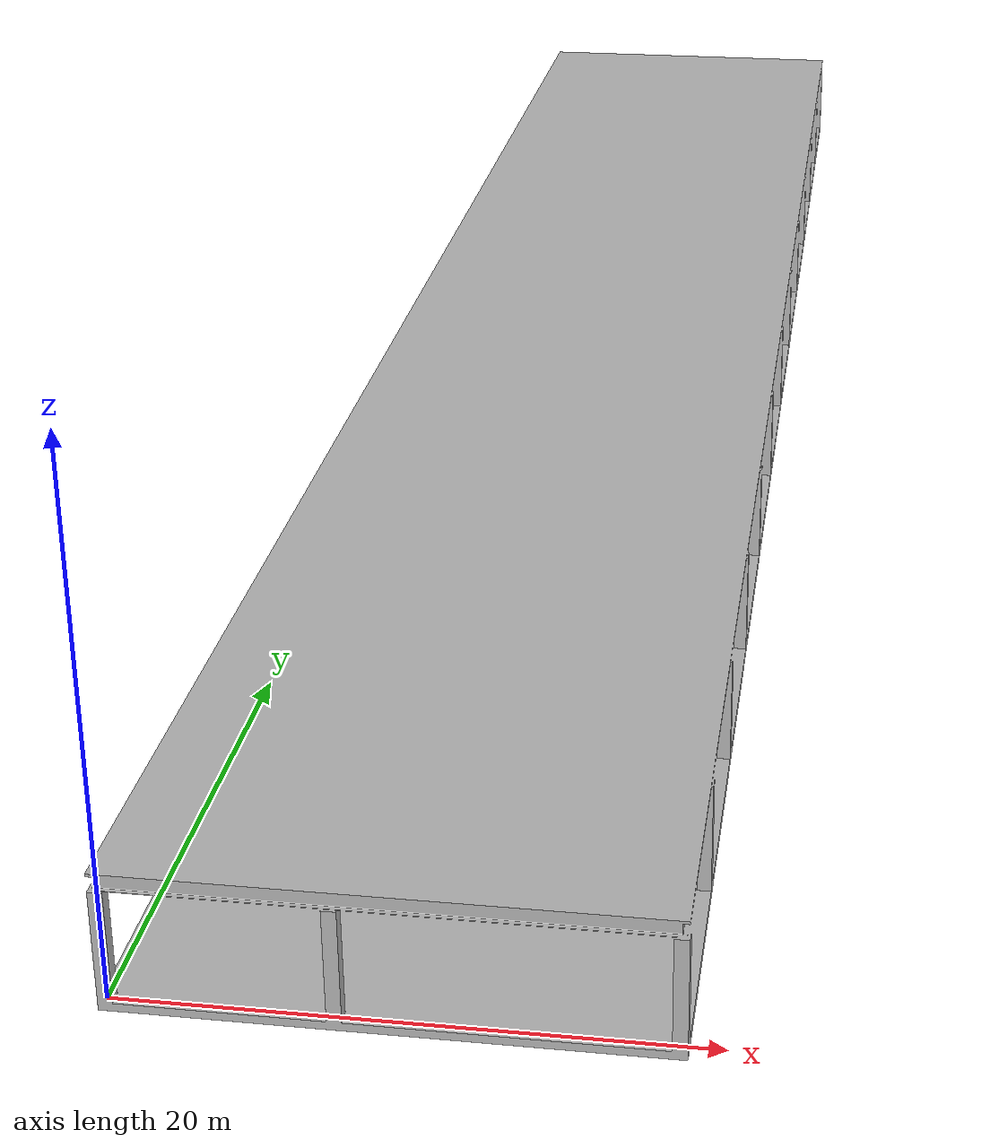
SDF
<?xml version="1.0"?>
<sdf version="1.5">
  <model name="plant">
    <link name="link">
      <gravity>false</gravity>
      <pose>0 0 0 0 0 0</pose>
      <collision name="collision">
        <geometry>
          <mesh>
            <uri>model://plant/潍坊厂房.STL</uri>
          </mesh>
        </geometry>
      </collision>
      <visual name="visual">
        <geometry>
          <mesh>
            <uri>model://plant/潍坊厂房.STL</uri>
          </mesh>
        </geometry>
      </visual>
    </link>
  </model>
</sdf>
